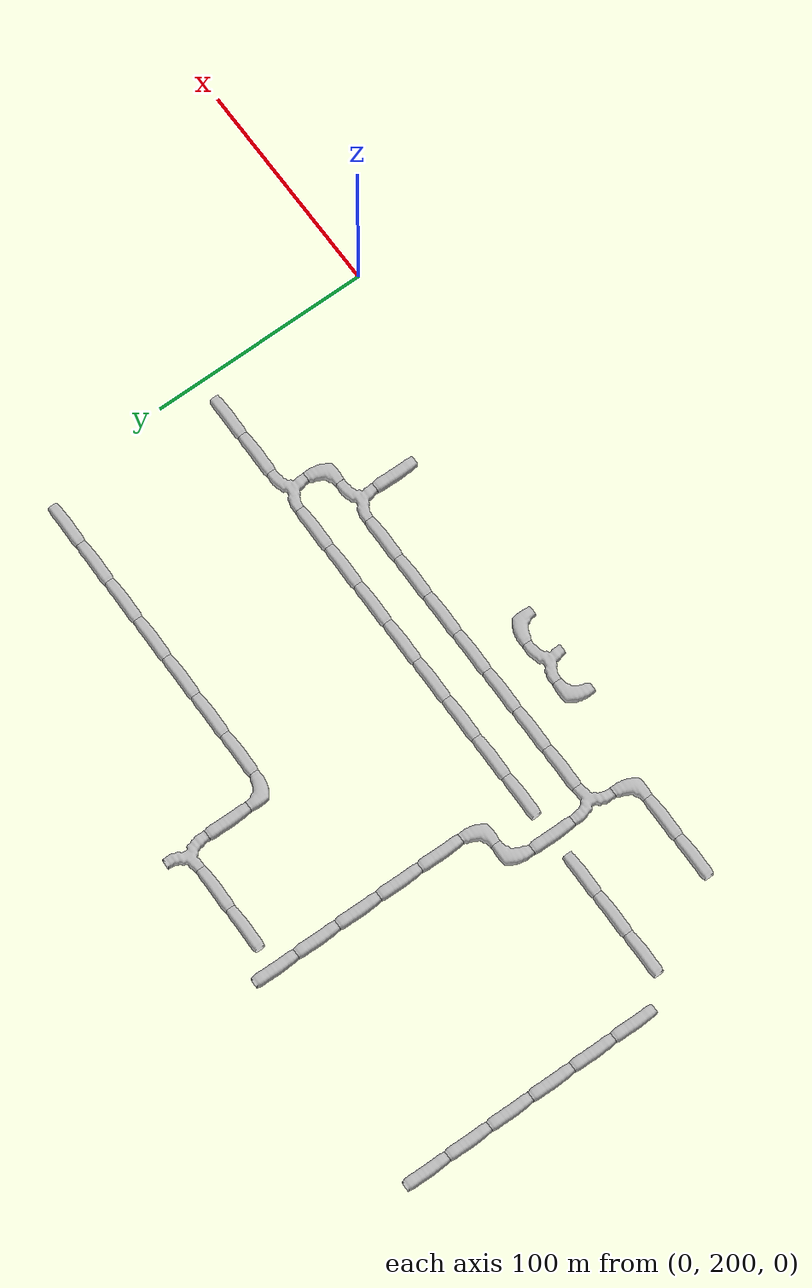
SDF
<sdf version="1.6">
 <world name="cave_32000_64">
  <include>
   <static>true</static>
   <name>cave_-4_12</name>
   <pose>-80 240 0 0 0 0.0</pose>
   <uri>model://cave_straight_20m</uri>
  </include>
  <include>
   <static>true</static>
   <name>cave_-4_13</name>
   <pose>-80 260 0 0 0 3.141592653589793</pose>
   <uri>model://cave_3way_20m</uri>
  </include>
  <include>
   <static>true</static>
   <name>cave_-3_13</name>
   <pose>-60 260 0 0 0 1.5707963267948966</pose>
   <uri>model://cave_L_20m</uri>
  </include>
  <include>
   <static>true</static>
   <name>cave_-3_14</name>
   <pose>-60 280 0 0 0 3.141592653589793</pose>
   <uri>model://cave_3way_20m</uri>
  </include>
  <include>
   <static>true</static>
   <name>cave_-2_14</name>
   <pose>-40 280 0 0 0 1.5707963267948966</pose>
   <uri>model://cave_straight_20m</uri>
  </include>
  <include>
   <static>true</static>
   <name>cave_-1_14</name>
   <pose>-20 280 0 0 0 1.5707963267948966</pose>
   <uri>model://cave_straight_20m</uri>
  </include>
  <include>
   <static>true</static>
   <name>cave_-4_14</name>
   <pose>-80 280 0 0 0 1.5707963267948966</pose>
   <uri>model://cave_straight_20m</uri>
  </include>
  <include>
   <static>true</static>
   <name>cave_-5_14</name>
   <pose>-100 280 0 0 0 1.5707963267948966</pose>
   <uri>model://cave_straight_20m</uri>
  </include>
  <include>
   <static>true</static>
   <name>cave_-6_14</name>
   <pose>-120 280 0 0 0 1.5707963267948966</pose>
   <uri>model://cave_straight_20m</uri>
  </include>
  <include>
   <static>true</static>
   <name>cave_-7_14</name>
   <pose>-140 280 0 0 0 1.5707963267948966</pose>
   <uri>model://cave_straight_20m</uri>
  </include>
  <include>
   <static>true</static>
   <name>cave_-8_14</name>
   <pose>-160 280 0 0 0 1.5707963267948966</pose>
   <uri>model://cave_straight_20m</uri>
  </include>
  <include>
   <static>true</static>
   <name>cave_-9_14</name>
   <pose>-180 280 0 0 0 1.5707963267948966</pose>
   <uri>model://cave_straight_20m</uri>
  </include>
  <include>
   <static>true</static>
   <name>cave_-10_14</name>
   <pose>-200 280 0 0 0 1.5707963267948966</pose>
   <uri>model://cave_straight_20m</uri>
  </include>
  <include>
   <static>true</static>
   <name>cave_-11_14</name>
   <pose>-220 280 0 0 0 1.5707963267948966</pose>
   <uri>model://cave_straight_20m</uri>
  </include>
  <include>
   <static>true</static>
   <name>cave_-5_13</name>
   <pose>-100 260 0 0 0 1.5707963267948966</pose>
   <uri>model://cave_straight_20m</uri>
  </include>
  <include>
   <static>true</static>
   <name>cave_-6_13</name>
   <pose>-120 260 0 0 0 1.5707963267948966</pose>
   <uri>model://cave_straight_20m</uri>
  </include>
  <include>
   <static>true</static>
   <name>cave_-7_13</name>
   <pose>-140 260 0 0 0 1.5707963267948966</pose>
   <uri>model://cave_straight_20m</uri>
  </include>
  <include>
   <static>true</static>
   <name>cave_-8_13</name>
   <pose>-160 260 0 0 0 1.5707963267948966</pose>
   <uri>model://cave_straight_20m</uri>
  </include>
  <include>
   <static>true</static>
   <name>cave_-9_13</name>
   <pose>-180 260 0 0 0 1.5707963267948966</pose>
   <uri>model://cave_straight_20m</uri>
  </include>
  <include>
   <static>true</static>
   <name>cave_-10_13</name>
   <pose>-200 260 0 0 0 1.5707963267948966</pose>
   <uri>model://cave_straight_20m</uri>
  </include>
  <include>
   <static>true</static>
   <name>cave_-11_13</name>
   <pose>-220 260 0 0 0 1.5707963267948966</pose>
   <uri>model://cave_straight_20m</uri>
  </include>
  <include>
   <static>true</static>
   <name>cave_-12_13</name>
   <pose>-240 260 0 0 0 -1.5707963267948966</pose>
   <uri>model://cave_3way_20m</uri>
  </include>
  <include>
   <static>true</static>
   <name>cave_-12_12</name>
   <pose>-240 240 0 0 0 1.5707963267948966</pose>
   <uri>model://cave_L_20m</uri>
  </include>
  <include>
   <static>true</static>
   <name>cave_-13_12</name>
   <pose>-260 240 0 0 0 1.5707963267948966</pose>
   <uri>model://cave_straight_20m</uri>
  </include>
  <include>
   <static>true</static>
   <name>cave_-14_12</name>
   <pose>-280 240 0 0 0 1.5707963267948966</pose>
   <uri>model://cave_straight_20m</uri>
  </include>
  <include>
   <static>true</static>
   <name>cave_-8_12</name>
   <pose>-160 240 0 0 0 3.141592653589793</pose>
   <uri>model://cave_L_20m</uri>
  </include>
  <include>
   <static>true</static>
   <name>cave_-9_12</name>
   <pose>-180 240 0 0 0 3.141592653589793</pose>
   <uri>model://cave_3way_20m</uri>
  </include>
  <include>
   <static>true</static>
   <name>cave_-10_12</name>
   <pose>-200 240 0 0 0 -1.5707963267948966</pose>
   <uri>model://cave_L_20m</uri>
  </include>
  <include>
   <static>true</static>
   <name>cave_-15_14</name>
   <pose>-300 280 0 0 0 1.5707963267948966</pose>
   <uri>model://cave_straight_20m</uri>
  </include>
  <include>
   <static>true</static>
   <name>cave_-14_14</name>
   <pose>-280 280 0 0 0 1.5707963267948966</pose>
   <uri>model://cave_straight_20m</uri>
  </include>
  <include>
   <static>true</static>
   <name>cave_-13_14</name>
   <pose>-260 280 0 0 0 1.5707963267948966</pose>
   <uri>model://cave_straight_20m</uri>
  </include>
  <include>
   <static>true</static>
   <name>cave_-12_14</name>
   <pose>-240 280 0 0 0 0.0</pose>
   <uri>model://cave_straight_20m</uri>
  </include>
  <include>
   <static>true</static>
   <name>cave_-12_15</name>
   <pose>-240 300 0 0 0 -1.5707963267948966</pose>
   <uri>model://cave_L_20m</uri>
  </include>
  <include>
   <static>true</static>
   <name>cave_-11_15</name>
   <pose>-220 300 0 0 0 1.5707963267948966</pose>
   <uri>model://cave_L_20m</uri>
  </include>
  <include>
   <static>true</static>
   <name>cave_-11_16</name>
   <pose>-220 320 0 0 0 0.0</pose>
   <uri>model://cave_straight_20m</uri>
  </include>
  <include>
   <static>true</static>
   <name>cave_-11_17</name>
   <pose>-220 340 0 0 0 0.0</pose>
   <uri>model://cave_straight_20m</uri>
  </include>
  <include>
   <static>true</static>
   <name>cave_-11_18</name>
   <pose>-220 360 0 0 0 0.0</pose>
   <uri>model://cave_straight_20m</uri>
  </include>
  <include>
   <static>true</static>
   <name>cave_-11_19</name>
   <pose>-220 380 0 0 0 0.0</pose>
   <uri>model://cave_straight_20m</uri>
  </include>
  <include>
   <static>true</static>
   <name>cave_-11_20</name>
   <pose>-220 400 0 0 0 0.0</pose>
   <uri>model://cave_straight_20m</uri>
  </include>
  <include>
   <static>true</static>
   <name>cave_-8_20</name>
   <pose>-160 400 0 0 0 1.5707963267948966</pose>
   <uri>model://cave_3way_20m</uri>
  </include>
  <include>
   <static>true</static>
   <name>cave_-8_19</name>
   <pose>-160 380 0 0 0 0.0</pose>
   <uri>model://cave_straight_20m</uri>
  </include>
  <include>
   <static>true</static>
   <name>cave_-8_18</name>
   <pose>-160 360 0 0 0 0.0</pose>
   <uri>model://cave_L_20m</uri>
  </include>
  <include>
   <static>true</static>
   <name>cave_-7_18</name>
   <pose>-140 360 0 0 0 1.5707963267948966</pose>
   <uri>model://cave_straight_20m</uri>
  </include>
  <include>
   <static>true</static>
   <name>cave_-6_18</name>
   <pose>-120 360 0 0 0 1.5707963267948966</pose>
   <uri>model://cave_straight_20m</uri>
  </include>
  <include>
   <static>true</static>
   <name>cave_-5_18</name>
   <pose>-100 360 0 0 0 1.5707963267948966</pose>
   <uri>model://cave_straight_20m</uri>
  </include>
  <include>
   <static>true</static>
   <name>cave_-4_18</name>
   <pose>-80 360 0 0 0 1.5707963267948966</pose>
   <uri>model://cave_straight_20m</uri>
  </include>
  <include>
   <static>true</static>
   <name>cave_-3_18</name>
   <pose>-60 360 0 0 0 1.5707963267948966</pose>
   <uri>model://cave_straight_20m</uri>
  </include>
  <include>
   <static>true</static>
   <name>cave_-2_18</name>
   <pose>-40 360 0 0 0 1.5707963267948966</pose>
   <uri>model://cave_straight_20m</uri>
  </include>
  <include>
   <static>true</static>
   <name>cave_-1_18</name>
   <pose>-20 360 0 0 0 1.5707963267948966</pose>
   <uri>model://cave_straight_20m</uri>
  </include>
  <include>
   <static>true</static>
   <name>cave_-9_20</name>
   <pose>-180 400 0 0 0 1.5707963267948966</pose>
   <uri>model://cave_straight_20m</uri>
  </include>
  <include>
   <static>true</static>
   <name>cave_-10_20</name>
   <pose>-200 400 0 0 0 1.5707963267948966</pose>
   <uri>model://cave_straight_20m</uri>
  </include>
  <include>
   <static>true</static>
   <name>cave_-16_20</name>
   <pose>-320 400 0 0 0 0.0</pose>
   <uri>model://cave_straight_20m</uri>
  </include>
  <include>
   <static>true</static>
   <name>cave_-16_19</name>
   <pose>-320 380 0 0 0 0.0</pose>
   <uri>model://cave_straight_20m</uri>
  </include>
  <include>
   <static>true</static>
   <name>cave_-16_18</name>
   <pose>-320 360 0 0 0 0.0</pose>
   <uri>model://cave_straight_20m</uri>
  </include>
  <include>
   <static>true</static>
   <name>cave_-16_17</name>
   <pose>-320 340 0 0 0 0.0</pose>
   <uri>model://cave_straight_20m</uri>
  </include>
  <include>
   <static>true</static>
   <name>cave_-16_16</name>
   <pose>-320 320 0 0 0 0.0</pose>
   <uri>model://cave_straight_20m</uri>
  </include>
  <include>
   <static>true</static>
   <name>cave_-16_15</name>
   <pose>-320 300 0 0 0 0.0</pose>
   <uri>model://cave_straight_20m</uri>
  </include>
 </world>
</sdf>
